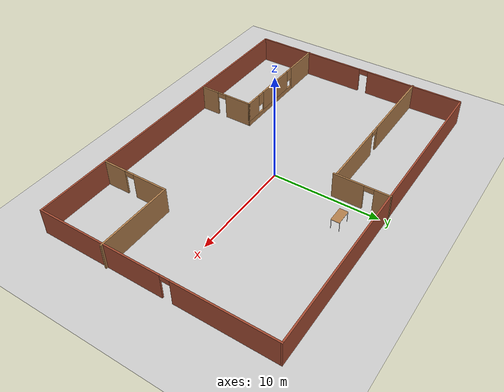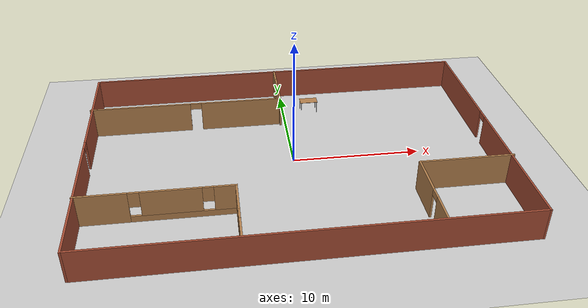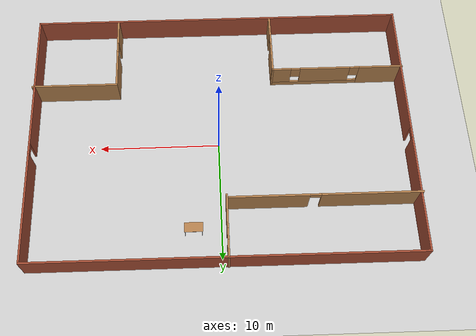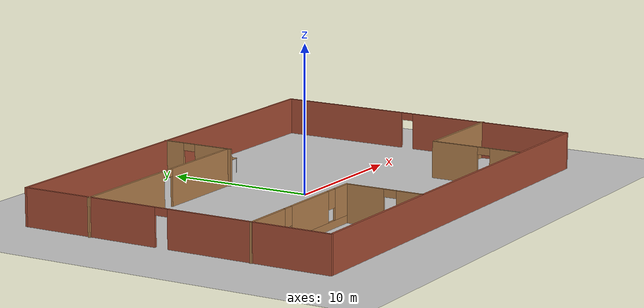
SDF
<sdf version="1.6">
 <world name="default">
  <model name="ground_plane">
   <static>1</static>
   <link name="link">
    <collision name="collision">
     <geometry><plane><normal>0 0 1</normal><size>100 100</size></plane></geometry>
     <surface>
      <contact><collide_bitmask>65535</collide_bitmask></contact>
      <friction><ode><mu>100</mu><mu2>50</mu2></ode></friction>
     </surface>
    </collision>
    <visual name="visual">
     <cast_shadows>0</cast_shadows>
     <geometry><plane><normal>0 0 1</normal><size>100 100</size></plane></geometry>
     <material>
      <script><uri>file://media/materials/scripts/gazebo.material</uri><name>Gazebo/Grey</name></script>
     </material>
    </visual>
   </link>
  </model>
  <model name="Robot_Environment">
   <pose>-0.1508 -0.381017 0 0 -0 0</pose>
   <link name="Wall_10">
    <pose>15.6555 -0.029143 0 0 -0 1.5708</pose>
    <visual name="Wall_10_Visual_0">
     <pose>-5.05285 0 1.25 0 -0 0</pose>
     <geometry><box><size>11.8943 0.15 2.5</size></box></geometry>
     <material>
      <script><uri>file://media/materials/scripts/gazebo.material</uri><name>Gazebo/Bricks</name></script>
      <ambient>1 1 1 1</ambient>
     </material>
     <meta><layer>0</layer></meta>
    </visual>
    <collision name="Wall_10_Collision_0">
     <geometry><box><size>11.8943 0.15 2.5</size></box></geometry>
     <pose>-5.05285 0 1.25 0 -0 0</pose>
    </collision>
    <visual name="Wall_10_Visual_1">
     <pose>6.39715 0 1.25 0 -0 0</pose>
     <geometry><box><size>9.20569 0.15 2.5</size></box></geometry>
     <material>
      <script><uri>file://media/materials/scripts/gazebo.material</uri><name>Gazebo/Bricks</name></script>
      <ambient>1 1 1 1</ambient>
     </material>
     <meta><layer>0</layer></meta>
    </visual>
    <collision name="Wall_10_Collision_1">
     <geometry><box><size>9.20569 0.15 2.5</size></box></geometry>
     <pose>6.39715 0 1.25 0 -0 0</pose>
    </collision>
    <visual name="Wall_10_Visual_2">
     <pose>1.34431 0 2.25 0 -0 0</pose>
     <geometry><box><size>0.9 0.15 0.5</size></box></geometry>
     <material>
      <script><uri>file://media/materials/scripts/gazebo.material</uri><name>Gazebo/Bricks</name></script>
      <ambient>1 1 1 1</ambient>
     </material>
     <meta><layer>0</layer></meta>
    </visual>
    <collision name="Wall_10_Collision_2">
     <geometry><box><size>0.9 0.15 0.5</size></box></geometry>
     <pose>1.34431 0 2.25 0 -0 0</pose>
    </collision>
   </link>
   <link name="Wall_11">
    <collision name="Wall_11_Collision">
     <geometry><box><size>31.5 0.15 2.5</size></box></geometry>
     <pose>0 0 1.25 0 -0 0</pose>
    </collision>
    <visual name="Wall_11_Visual">
     <pose>0 0 1.25 0 -0 0</pose>
     <geometry><box><size>31.5 0.15 2.5</size></box></geometry>
     <material>
      <script><uri>file://media/materials/scripts/gazebo.material</uri><name>Gazebo/Bricks</name></script>
      <ambient>1 1 1 1</ambient>
     </material>
     <meta><layer>0</layer></meta>
    </visual>
    <pose>-0.019531 10.8959 0 0 -0 3.14159</pose>
   </link>
   <link name="Wall_13">
    <pose>-10.2057 -5.56169 0 0 -0 0</pose>
    <visual name="Wall_13_Visual_0">
     <pose>-3.75304 0 1.25 0 -0 0</pose>
     <geometry><box><size>3.74392 0.15 2.5</size></box></geometry>
     <material>
      <script><uri>file://media/materials/scripts/gazebo.material</uri><name>Gazebo/Wood</name></script>
      <ambient>0.996078 0.47451 0.0196078 1</ambient>
     </material>
     <meta><layer>0</layer></meta>
    </visual>
    <collision name="Wall_13_Collision_0">
     <geometry><box><size>3.74392 0.15 2.5</size></box></geometry>
     <pose>-3.75304 0 1.25 0 -0 0</pose>
    </collision>
    <visual name="Wall_13_Visual_1">
     <pose>1.87196 0 0.25 0 -0 0</pose>
     <geometry><box><size>7.50608 0.15 0.5</size></box></geometry>
     <material>
      <script><uri>file://media/materials/scripts/gazebo.material</uri><name>Gazebo/Wood</name></script>
      <ambient>0.996078 0.47451 0.0196078 1</ambient>
     </material>
     <meta><layer>0</layer></meta>
    </visual>
    <collision name="Wall_13_Collision_1">
     <geometry><box><size>7.50608 0.15 0.5</size></box></geometry>
     <pose>1.87196 0 0.25 0 -0 0</pose>
    </collision>
    <visual name="Wall_13_Visual_2">
     <pose>1.05179 0 1.5 0 -0 0</pose>
     <geometry><box><size>4.26574 0.15 2</size></box></geometry>
     <material>
      <script><uri>file://media/materials/scripts/gazebo.material</uri><name>Gazebo/Wood</name></script>
      <ambient>0.996078 0.47451 0.0196078 1</ambient>
     </material>
     <meta><layer>0</layer></meta>
    </visual>
    <collision name="Wall_13_Collision_2">
     <geometry><box><size>4.26574 0.15 2</size></box></geometry>
     <pose>1.05179 0 1.5 0 -0 0</pose>
    </collision>
    <visual name="Wall_13_Visual_3">
     <pose>4.80483 0 1.5 0 -0 0</pose>
     <geometry><box><size>1.64034 0.15 2</size></box></geometry>
     <material>
      <script><uri>file://media/materials/scripts/gazebo.material</uri><name>Gazebo/Wood</name></script>
      <ambient>0.996078 0.47451 0.0196078 1</ambient>
     </material>
     <meta><layer>0</layer></meta>
    </visual>
    <collision name="Wall_13_Collision_3">
     <geometry><box><size>1.64034 0.15 2</size></box></geometry>
     <pose>4.80483 0 1.5 0 -0 0</pose>
    </collision>
    <visual name="Wall_13_Visual_4">
     <pose>-1.48108 0 1.9 0 -0 0</pose>
     <geometry><box><size>0.8 0.15 1.2</size></box></geometry>
     <material>
      <script><uri>file://media/materials/scripts/gazebo.material</uri><name>Gazebo/Wood</name></script>
      <ambient>0.996078 0.47451 0.0196078 1</ambient>
     </material>
     <meta><layer>0</layer></meta>
    </visual>
    <collision name="Wall_13_Collision_4">
     <geometry><box><size>0.8 0.15 1.2</size></box></geometry>
     <pose>-1.48108 0 1.9 0 -0 0</pose>
    </collision>
    <visual name="Wall_13_Visual_5">
     <pose>3.58466 0 1.9 0 -0 0</pose>
     <geometry><box><size>0.8 0.15 1.2</size></box></geometry>
     <material>
      <script><uri>file://media/materials/scripts/gazebo.material</uri><name>Gazebo/Wood</name></script>
      <ambient>0.996078 0.47451 0.0196078 1</ambient>
     </material>
     <meta><layer>0</layer></meta>
    </visual>
    <collision name="Wall_13_Collision_5">
     <geometry><box><size>0.8 0.15 1.2</size></box></geometry>
     <pose>3.58466 0 1.9 0 -0 0</pose>
    </collision>
   </link>
   <link name="Wall_14">
    <pose>-4.65571 -8.23669 0 0 0 -1.5708</pose>
    <visual name="Wall_14_Visual_0">
     <pose>-1.38054 0 1.25 0 -0 0</pose>
     <geometry><box><size>2.73892 0.15 2.5</size></box></geometry>
     <material>
      <script><uri>file://media/materials/scripts/gazebo.material</uri><name>Gazebo/Wood</name></script>
      <ambient>0.996078 0.47451 0.0196078 1</ambient>
     </material>
     <meta><layer>0</layer></meta>
    </visual>
    <collision name="Wall_14_Collision_0">
     <geometry><box><size>2.73892 0.15 2.5</size></box></geometry>
     <pose>-1.38054 0 1.25 0 -0 0</pose>
    </collision>
    <visual name="Wall_14_Visual_1">
     <pose>1.81946 0 1.25 0 -0 0</pose>
     <geometry><box><size>1.86108 0.15 2.5</size></box></geometry>
     <material>
      <script><uri>file://media/materials/scripts/gazebo.material</uri><name>Gazebo/Wood</name></script>
      <ambient>0.996078 0.47451 0.0196078 1</ambient>
     </material>
     <meta><layer>0</layer></meta>
    </visual>
    <collision name="Wall_14_Collision_1">
     <geometry><box><size>1.86108 0.15 2.5</size></box></geometry>
     <pose>1.81946 0 1.25 0 -0 0</pose>
    </collision>
    <visual name="Wall_14_Visual_2">
     <pose>0.438919 0 2.25 0 -0 0</pose>
     <geometry><box><size>0.9 0.15 0.5</size></box></geometry>
     <material>
      <script><uri>file://media/materials/scripts/gazebo.material</uri><name>Gazebo/Wood</name></script>
      <ambient>0.996078 0.47451 0.0196078 1</ambient>
     </material>
     <meta><layer>0</layer></meta>
    </visual>
    <collision name="Wall_14_Collision_2">
     <geometry><box><size>0.9 0.15 0.5</size></box></geometry>
     <pose>0.438919 0 2.25 0 -0 0</pose>
    </collision>
   </link>
   <link name="Wall_16">
    <pose>-8.14189 6.0626 0 0 -0 0</pose>
    <visual name="Wall_16_Visual_0">
     <pose>-3.69137 0 1.25 0 -0 0</pose>
     <geometry><box><size>8.11727 0.15 2.5</size></box></geometry>
     <material>
      <script><uri>file://media/materials/scripts/gazebo.material</uri><name>Gazebo/Wood</name></script>
      <ambient>0.921569 0.807843 0.615686 1</ambient>
     </material>
     <meta><layer>0</layer></meta>
    </visual>
    <collision name="Wall_16_Collision_0">
     <geometry><box><size>8.11727 0.15 2.5</size></box></geometry>
     <pose>-3.69137 0 1.25 0 -0 0</pose>
    </collision>
    <visual name="Wall_16_Visual_1">
     <pose>4.50863 0 1.25 0 -0 0</pose>
     <geometry><box><size>6.48273 0.15 2.5</size></box></geometry>
     <material>
      <script><uri>file://media/materials/scripts/gazebo.material</uri><name>Gazebo/Wood</name></script>
      <ambient>0.921569 0.807843 0.615686 1</ambient>
     </material>
     <meta><layer>0</layer></meta>
    </visual>
    <collision name="Wall_16_Collision_1">
     <geometry><box><size>6.48273 0.15 2.5</size></box></geometry>
     <pose>4.50863 0 1.25 0 -0 0</pose>
    </collision>
    <visual name="Wall_16_Visual_2">
     <pose>0.817267 0 2.25 0 -0 0</pose>
     <geometry><box><size>0.9 0.15 0.5</size></box></geometry>
     <material>
      <script><uri>file://media/materials/scripts/gazebo.material</uri><name>Gazebo/Wood</name></script>
      <ambient>0.921569 0.807843 0.615686 1</ambient>
     </material>
     <meta><layer>0</layer></meta>
    </visual>
    <collision name="Wall_16_Collision_2">
     <geometry><box><size>0.9 0.15 0.5</size></box></geometry>
     <pose>0.817267 0 2.25 0 -0 0</pose>
    </collision>
   </link>
   <link name="Wall_18">
    <pose>-0.288871 8.40414 0 0 0 -1.5708</pose>
    <visual name="Wall_18_Visual_0">
     <pose>-1.86267 0 1.25 0 -0 0</pose>
     <geometry><box><size>1.52465 0.15 2.5</size></box></geometry>
     <material>
      <script><uri>file://media/materials/scripts/gazebo.material</uri><name>Gazebo/Wood</name></script>
      <ambient>0.921569 0.807843 0.615686 1</ambient>
     </material>
     <meta><layer>0</layer></meta>
    </visual>
    <collision name="Wall_18_Collision_0">
     <geometry><box><size>1.52465 0.15 2.5</size></box></geometry>
     <pose>-1.86267 0 1.25 0 -0 0</pose>
    </collision>
    <visual name="Wall_18_Visual_1">
     <pose>1.21233 0 1.25 0 -0 0</pose>
     <geometry><box><size>2.82535 0.15 2.5</size></box></geometry>
     <material>
      <script><uri>file://media/materials/scripts/gazebo.material</uri><name>Gazebo/Wood</name></script>
      <ambient>0.921569 0.807843 0.615686 1</ambient>
     </material>
     <meta><layer>0</layer></meta>
    </visual>
    <collision name="Wall_18_Collision_1">
     <geometry><box><size>2.82535 0.15 2.5</size></box></geometry>
     <pose>1.21233 0 1.25 0 -0 0</pose>
    </collision>
    <visual name="Wall_18_Visual_2">
     <pose>-0.650347 0 2.25 0 -0 0</pose>
     <geometry><box><size>0.9 0.15 0.5</size></box></geometry>
     <material>
      <script><uri>file://media/materials/scripts/gazebo.material</uri><name>Gazebo/Wood</name></script>
      <ambient>0.921569 0.807843 0.615686 1</ambient>
     </material>
     <meta><layer>0</layer></meta>
    </visual>
    <collision name="Wall_18_Collision_2">
     <geometry><box><size>0.9 0.15 0.5</size></box></geometry>
     <pose>-0.650347 0 2.25 0 -0 0</pose>
    </collision>
   </link>
   <link name="Wall_20">
    <pose>8.71689 -7.68169 0 0 -0 1.5708</pose>
    <visual name="Wall_20_Visual_0">
     <pose>-2.13589 0 1.25 0 -0 0</pose>
     <geometry><box><size>2.22823 0.15 2.5</size></box></geometry>
     <material>
      <script><uri>file://media/materials/scripts/gazebo.material</uri><name>Gazebo/Wood</name></script>
      <ambient>0.435294 0.796078 0.67451 1</ambient>
     </material>
     <meta><layer>0</layer></meta>
    </visual>
    <collision name="Wall_20_Collision_0">
     <geometry><box><size>2.22823 0.15 2.5</size></box></geometry>
     <pose>-2.13589 0 1.25 0 -0 0</pose>
    </collision>
    <visual name="Wall_20_Visual_1">
     <pose>1.56411 0 1.25 0 -0 0</pose>
     <geometry><box><size>3.37177 0.15 2.5</size></box></geometry>
     <material>
      <script><uri>file://media/materials/scripts/gazebo.material</uri><name>Gazebo/Wood</name></script>
      <ambient>0.435294 0.796078 0.67451 1</ambient>
     </material>
     <meta><layer>0</layer></meta>
    </visual>
    <collision name="Wall_20_Collision_1">
     <geometry><box><size>3.37177 0.15 2.5</size></box></geometry>
     <pose>1.56411 0 1.25 0 -0 0</pose>
    </collision>
    <visual name="Wall_20_Visual_2">
     <pose>-0.571772 0 2.25 0 -0 0</pose>
     <geometry><box><size>0.9 0.15 0.5</size></box></geometry>
     <material>
      <script><uri>file://media/materials/scripts/gazebo.material</uri><name>Gazebo/Wood</name></script>
      <ambient>0.435294 0.796078 0.67451 1</ambient>
     </material>
     <meta><layer>0</layer></meta>
    </visual>
    <collision name="Wall_20_Collision_2">
     <geometry><box><size>0.9 0.15 0.5</size></box></geometry>
     <pose>-0.571772 0 2.25 0 -0 0</pose>
    </collision>
   </link>
   <link name="Wall_21">
    <collision name="Wall_21_Collision">
     <geometry><box><size>7.25 0.15 2.5</size></box></geometry>
     <pose>0 0 1.25 0 -0 0</pose>
    </collision>
    <visual name="Wall_21_Visual">
     <pose>0 0 1.25 0 -0 0</pose>
     <geometry><box><size>7.25 0.15 2.5</size></box></geometry>
     <material>
      <script><uri>file://media/materials/scripts/gazebo.material</uri><name>Gazebo/Wood</name></script>
      <ambient>0.435294 0.796078 0.67451 1</ambient>
     </material>
     <meta><layer>0</layer></meta>
    </visual>
    <pose>12.2669 -4.50669 0 0 -0 0</pose>
   </link>
   <link name="Wall_8">
    <pose>-15.6945 -0.029143 0 0 0 -1.5708</pose>
    <visual name="Wall_8_Visual_0">
     <pose>-6.1509 0 1.25 0 -0 0</pose>
     <geometry><box><size>9.6982 0.15 2.5</size></box></geometry>
     <material>
      <script><uri>file://media/materials/scripts/gazebo.material</uri><name>Gazebo/Bricks</name></script>
      <ambient>1 1 1 1</ambient>
     </material>
     <meta><layer>0</layer></meta>
    </visual>
    <collision name="Wall_8_Collision_0">
     <geometry><box><size>9.6982 0.15 2.5</size></box></geometry>
     <pose>-6.1509 0 1.25 0 -0 0</pose>
    </collision>
    <visual name="Wall_8_Visual_1">
     <pose>5.2991 0 1.25 0 -0 0</pose>
     <geometry><box><size>11.4018 0.15 2.5</size></box></geometry>
     <material>
      <script><uri>file://media/materials/scripts/gazebo.material</uri><name>Gazebo/Bricks</name></script>
      <ambient>1 1 1 1</ambient>
     </material>
     <meta><layer>0</layer></meta>
    </visual>
    <collision name="Wall_8_Collision_1">
     <geometry><box><size>11.4018 0.15 2.5</size></box></geometry>
     <pose>5.2991 0 1.25 0 -0 0</pose>
    </collision>
    <visual name="Wall_8_Visual_2">
     <pose>-0.851804 0 2.25 0 -0 0</pose>
     <geometry><box><size>0.9 0.15 0.5</size></box></geometry>
     <material>
      <script><uri>file://media/materials/scripts/gazebo.material</uri><name>Gazebo/Bricks</name></script>
      <ambient>1 1 1 1</ambient>
     </material>
     <meta><layer>0</layer></meta>
    </visual>
    <collision name="Wall_8_Collision_2">
     <geometry><box><size>0.9 0.15 0.5</size></box></geometry>
     <pose>-0.851804 0 2.25 0 -0 0</pose>
    </collision>
   </link>
   <link name="Wall_9">
    <collision name="Wall_9_Collision">
     <geometry><box><size>31.5 0.15 2.5</size></box></geometry>
     <pose>0 0 1.25 0 -0 0</pose>
    </collision>
    <visual name="Wall_9_Visual">
     <pose>0 0 1.25 0 -0 0</pose>
     <geometry><box><size>31.5 0.15 2.5</size></box></geometry>
     <material>
      <script><uri>file://media/materials/scripts/gazebo.material</uri><name>Gazebo/Bricks</name></script>
      <ambient>1 1 1 1</ambient>
     </material>
     <meta><layer>0</layer></meta>
    </visual>
    <pose>-0.019531 -10.9541 0 0 -0 0</pose>
   </link>
   <static>1</static>
  </model>
  <model name="table">
   <static>1</static>
   <link name="link">
    <collision name="surface">
     <pose>0 0 1 0 -0 0</pose>
     <geometry><box><size>1.5 0.8 0.03</size></box></geometry>
     <surface><friction><ode><mu>0.6</mu><mu2>0.6</mu2></ode></friction></surface>
    </collision>
    <visual name="visual1">
     <pose>0 0 1 0 -0 0</pose>
     <geometry><box><size>1.5 0.8 0.03</size></box></geometry>
     <material>
      <script><uri>file://media/materials/scripts/gazebo.material</uri><name>Gazebo/Wood</name></script>
     </material>
    </visual>
    <collision name="front_left_leg">
     <pose>0.68 0.38 0.5 0 -0 0</pose>
     <geometry><cylinder><radius>0.02</radius><length>1</length></cylinder></geometry>
    </collision>
    <visual name="front_left_leg">
     <pose>0.68 0.38 0.5 0 -0 0</pose>
     <geometry><cylinder><radius>0.02</radius><length>1</length></cylinder></geometry>
     <material>
      <script><uri>file://media/materials/scripts/gazebo.material</uri><name>Gazebo/Grey</name></script>
     </material>
    </visual>
    <collision name="front_right_leg">
     <pose>0.68 -0.38 0.5 0 -0 0</pose>
     <geometry><cylinder><radius>0.02</radius><length>1</length></cylinder></geometry>
    </collision>
    <visual name="front_right_leg">
     <pose>0.68 -0.38 0.5 0 -0 0</pose>
     <geometry><cylinder><radius>0.02</radius><length>1</length></cylinder></geometry>
     <material>
      <script><uri>file://media/materials/scripts/gazebo.material</uri><name>Gazebo/Grey</name></script>
     </material>
    </visual>
    <collision name="back_right_leg">
     <pose>-0.68 -0.38 0.5 0 -0 0</pose>
     <geometry><cylinder><radius>0.02</radius><length>1</length></cylinder></geometry>
    </collision>
    <visual name="back_right_leg">
     <pose>-0.68 -0.38 0.5 0 -0 0</pose>
     <geometry><cylinder><radius>0.02</radius><length>1</length></cylinder></geometry>
     <material>
      <script><uri>file://media/materials/scripts/gazebo.material</uri><name>Gazebo/Grey</name></script>
     </material>
    </visual>
    <collision name="back_left_leg">
     <pose>-0.68 0.38 0.5 0 -0 0</pose>
     <geometry><cylinder><radius>0.02</radius><length>1</length></cylinder></geometry>
    </collision>
    <visual name="back_left_leg">
     <pose>-0.68 0.38 0.5 0 -0 0</pose>
     <geometry><cylinder><radius>0.02</radius><length>1</length></cylinder></geometry>
     <material>
      <script><uri>file://media/materials/scripts/gazebo.material</uri><name>Gazebo/Grey</name></script>
     </material>
    </visual>
   </link>
   <pose>2.25934 7.55379 0 0 -0 0</pose>
  </model>
 </world>
</sdf>
